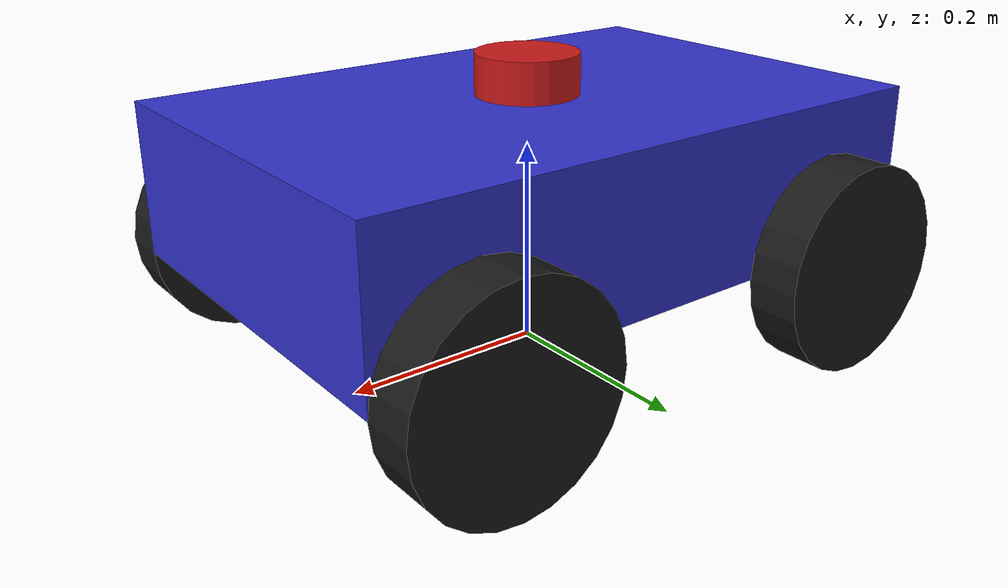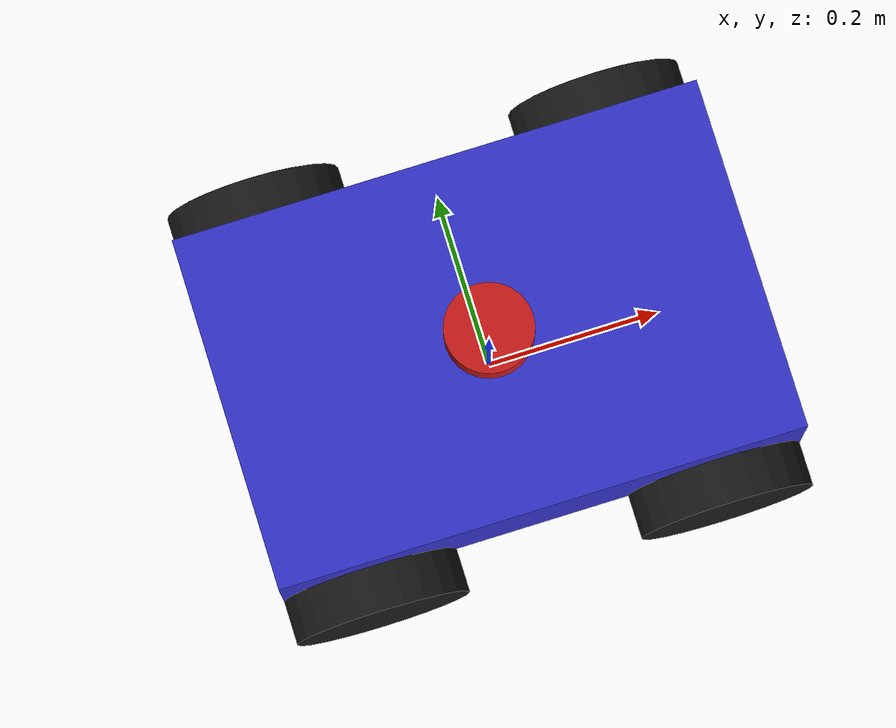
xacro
<?xml version="1.0"?>
<robot name="four_wheel_robot"
  xmlns:xacro="http://www.ros.org/wiki/xacro">

  <!-- =====================================================
       PROPERTIES
       ===================================================== -->
  <xacro:property name="wheel_radius" value="0.1"/>
  <xacro:property name="wheel_width"  value="0.05"/>
  <xacro:property name="base_length"  value="0.6"/>
  <xacro:property name="base_width"   value="0.4"/>
  <xacro:property name="base_height"  value="0.15"/>
  <xacro:property name="wheel_mass"   value="1.0"/>
  <xacro:property name="base_mass"    value="10.0"/>
  <xacro:property name="lidar_mass"   value="0.2"/>
  <xacro:property name="imu_mass"     value="0.1"/>
  <xacro:property name="wheel_separation" value="${base_width + wheel_width}"/>

  <!-- =====================================================
       MATERIALS (RViz only — Gazebo uses its own)
       ===================================================== -->
  <material name="blue">
    <color rgba="0.2 0.2 0.8 1.0"/>
  </material>
  <material name="black">
    <color rgba="0.1 0.1 0.1 1.0"/>
  </material>
  <material name="red">
    <color rgba="0.8 0.1 0.1 1.0"/>
  </material>
  <material name="grey">
    <color rgba="0.5 0.5 0.5 1.0"/>
  </material>

  <!-- =====================================================
       BASE FOOTPRINT  (ground-projected origin)
       ===================================================== -->
  <link name="base_footprint"/>

  <joint name="base_joint" type="fixed">
    <parent link="base_footprint"/>
    <child  link="base_link"/>
    <origin xyz="0 0 ${wheel_radius + base_height/2}" rpy="0 0 0"/>
  </joint>

  <!-- =====================================================
       BASE LINK  (chassis)
       ===================================================== -->
  <link name="base_link">
    <visual>
      <geometry>
        <box size="${base_length} ${base_width} ${base_height}"/>
      </geometry>
      <material name="blue"/>
    </visual>
    <collision>
      <geometry>
        <box size="${base_length} ${base_width} ${base_height}"/>
      </geometry>
    </collision>
    <inertial>
      <mass value="${base_mass}"/>
      <origin xyz="0 0 0"/>
      <inertia
        ixx="${(1.0/12.0)*base_mass*(base_width*base_width + base_height*base_height)}"
        iyy="${(1.0/12.0)*base_mass*(base_length*base_length + base_height*base_height)}"
        izz="${(1.0/12.0)*base_mass*(base_length*base_length + base_width*base_width)}"
        ixy="0" ixz="0" iyz="0"/>
    </inertial>
  </link>

  <gazebo reference="base_link">
    <material>Gazebo/Blue</material>
  </gazebo>

  <!-- =====================================================
       WHEEL MACRO
       ===================================================== -->
  <xacro:macro name="wheel" params="name x y">
    <link name="${name}">
      <visual>
        <origin rpy="${pi/2} 0 0"/>
        <geometry>
          <cylinder radius="${wheel_radius}" length="${wheel_width}"/>
        </geometry>
        <material name="black"/>
      </visual>
      <collision>
        <origin rpy="${pi/2} 0 0"/>
        <geometry>
          <cylinder radius="${wheel_radius}" length="${wheel_width}"/>
        </geometry>
      </collision>
      <inertial>
        <mass value="${wheel_mass}"/>
        <origin rpy="${pi/2} 0 0"/>
        <inertia
          ixx="${(1.0/12.0)*wheel_mass*(3*wheel_radius*wheel_radius + wheel_width*wheel_width)}"
          iyy="${(1.0/12.0)*wheel_mass*(3*wheel_radius*wheel_radius + wheel_width*wheel_width)}"
          izz="${(1.0/2.0)*wheel_mass*wheel_radius*wheel_radius}"
          ixy="0" ixz="0" iyz="0"/>
      </inertial>
    </link>

    <gazebo reference="${name}">
      <material>Gazebo/DarkGrey</material>
      <mu1>1.5</mu1>
      <mu2>1.5</mu2>
      <kp>1000000.0</kp>
      <kd>100.0</kd>
    </gazebo>

    <joint name="${name}_joint" type="continuous">
      <parent link="base_link"/>
      <child  link="${name}"/>
      <origin xyz="${x} ${y} ${-base_height/2}"/>
      <axis   xyz="0 1 0"/>
      <dynamics damping="0.1" friction="0.1"/>
    </joint>
  </xacro:macro>

  <!-- =====================================================
       INSTANTIATE 4 WHEELS
       ===================================================== -->
  <xacro:wheel name="front_left_wheel"
    x="${base_length/2 - wheel_radius}" y="${(base_width + wheel_width)/2}"/>
  <xacro:wheel name="front_right_wheel"
    x="${base_length/2 - wheel_radius}" y="${-(base_width + wheel_width)/2}"/>
  <xacro:wheel name="rear_left_wheel"
    x="${-(base_length/2 - wheel_radius)}" y="${(base_width + wheel_width)/2}"/>
  <xacro:wheel name="rear_right_wheel"
    x="${-(base_length/2 - wheel_radius)}" y="${-(base_width + wheel_width)/2}"/>

  <!-- =====================================================
       LIDAR SENSOR  (mounted on top-center of chassis)
       ===================================================== -->
  <link name="lidar_link">
    <visual>
      <geometry>
        <cylinder radius="0.05" length="0.04"/>
      </geometry>
      <material name="red"/>
    </visual>
    <collision>
      <geometry>
        <cylinder radius="0.05" length="0.04"/>
      </geometry>
    </collision>
    <inertial>
      <mass value="${lidar_mass}"/>
      <inertia
        ixx="${(1.0/12.0)*lidar_mass*(3*0.05*0.05 + 0.04*0.04)}"
        iyy="${(1.0/12.0)*lidar_mass*(3*0.05*0.05 + 0.04*0.04)}"
        izz="${(1.0/2.0)*lidar_mass*0.05*0.05}"
        ixy="0" ixz="0" iyz="0"/>
    </inertial>
  </link>

  <joint name="lidar_joint" type="fixed">
    <parent link="base_link"/>
    <child  link="lidar_link"/>
    <origin xyz="0 0 ${base_height/2 + 0.02}" rpy="0 0 0"/>
  </joint>

  <gazebo reference="lidar_link">
    <material>Gazebo/Red</material>
    <sensor type="ray" name="lidar_sensor">
      <always_on>true</always_on>
      <update_rate>10</update_rate>
      <visualize>true</visualize>
      <ray>
        <scan>
          <horizontal>
            <samples>360</samples>
            <resolution>1</resolution>
            <min_angle>-3.14159</min_angle>
            <max_angle>3.14159</max_angle>
          </horizontal>
        </scan>
        <range>
          <min>0.15</min>
          <max>12.0</max>
          <resolution>0.01</resolution>
        </range>
        <noise>
          <type>gaussian</type>
          <mean>0.0</mean>
          <stddev>0.01</stddev>
        </noise>
      </ray>
      <plugin filename="libgazebo_ros_ray_sensor.so" name="lidar_plugin">
        <ros>
          <remapping>~/out:=scan</remapping>
        </ros>
        <output_type>sensor_msgs/LaserScan</output_type>
        <frame_name>lidar_link</frame_name>
      </plugin>
    </sensor>
  </gazebo>

  <!-- =====================================================
       IMU SENSOR  (inside chassis, at center)
       ===================================================== -->
  <link name="imu_link">
    <visual>
      <geometry>
        <box size="0.02 0.02 0.01"/>
      </geometry>
      <material name="grey"/>
    </visual>
    <collision>
      <geometry>
        <box size="0.02 0.02 0.01"/>
      </geometry>
    </collision>
    <inertial>
      <mass value="${imu_mass}"/>
      <inertia
        ixx="${(1.0/12.0)*imu_mass*(0.02*0.02 + 0.01*0.01)}"
        iyy="${(1.0/12.0)*imu_mass*(0.02*0.02 + 0.01*0.01)}"
        izz="${(1.0/12.0)*imu_mass*(0.02*0.02 + 0.02*0.02)}"
        ixy="0" ixz="0" iyz="0"/>
    </inertial>
  </link>

  <joint name="imu_joint" type="fixed">
    <parent link="base_link"/>
    <child  link="imu_link"/>
    <origin xyz="0 0 0" rpy="0 0 0"/>
  </joint>

  <gazebo reference="imu_link">
    <sensor type="imu" name="imu_sensor">
      <always_on>true</always_on>
      <update_rate>100</update_rate>
      <visualize>false</visualize>
      <imu>
        <angular_velocity>
          <x><noise type="gaussian"><mean>0.0</mean><stddev>0.0002</stddev></noise></x>
          <y><noise type="gaussian"><mean>0.0</mean><stddev>0.0002</stddev></noise></y>
          <z><noise type="gaussian"><mean>0.0</mean><stddev>0.0002</stddev></noise></z>
        </angular_velocity>
        <linear_acceleration>
          <x><noise type="gaussian"><mean>0.0</mean><stddev>0.017</stddev></noise></x>
          <y><noise type="gaussian"><mean>0.0</mean><stddev>0.017</stddev></noise></y>
          <z><noise type="gaussian"><mean>0.0</mean><stddev>0.017</stddev></noise></z>
        </linear_acceleration>
      </imu>
      <plugin filename="libgazebo_ros_imu_sensor.so" name="imu_plugin">
        <ros>
          <remapping>~/out:=imu</remapping>
        </ros>
        <initial_orientation_as_reference>false</initial_orientation_as_reference>
        <frame_name>imu_link</frame_name>
      </plugin>
    </sensor>
  </gazebo>

  <!-- =====================================================
       ROS2 CONTROL — hardware interface for Gazebo
       ===================================================== -->
  <ros2_control name="GazeboSystem" type="system">
    <hardware>
      <plugin>gazebo_ros2_control/GazeboSystem</plugin>
    </hardware>

    <joint name="front_left_wheel_joint">
      <command_interface name="velocity"/>
      <state_interface name="velocity"/>
      <state_interface name="position"/>
    </joint>
    <joint name="front_right_wheel_joint">
      <command_interface name="velocity"/>
      <state_interface name="velocity"/>
      <state_interface name="position"/>
    </joint>
    <joint name="rear_left_wheel_joint">
      <command_interface name="velocity"/>
      <state_interface name="velocity"/>
      <state_interface name="position"/>
    </joint>
    <joint name="rear_right_wheel_joint">
      <command_interface name="velocity"/>
      <state_interface name="velocity"/>
      <state_interface name="position"/>
    </joint>
  </ros2_control>

  <!-- =====================================================
       GAZEBO ROS2 CONTROL PLUGIN — loads controller_manager
       ===================================================== -->
  <gazebo>
    <plugin filename="libgazebo_ros2_control.so" name="gazebo_ros2_control">
      <parameters>$(find four_wheel_robot_description)/config/controllers.yaml</parameters>
    </plugin>
  </gazebo>

</robot>
